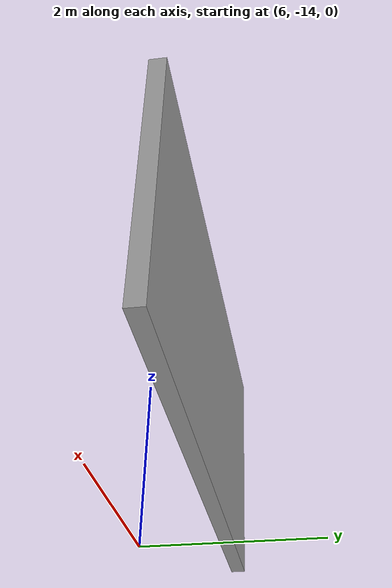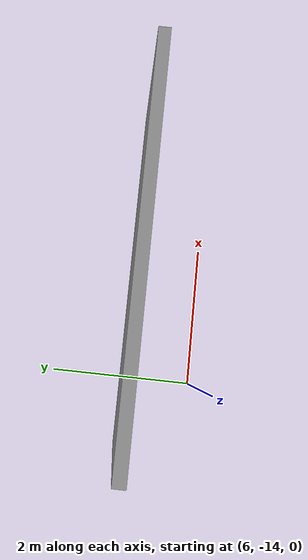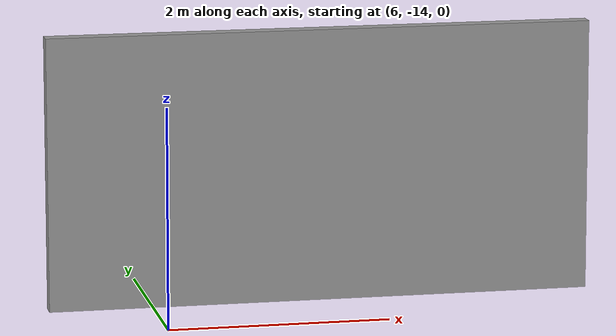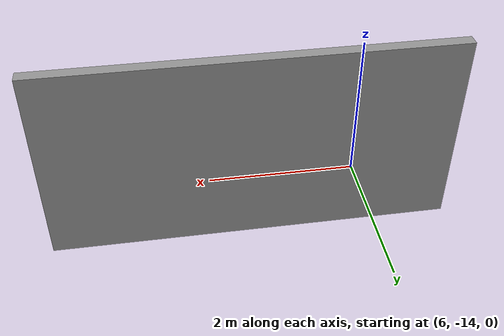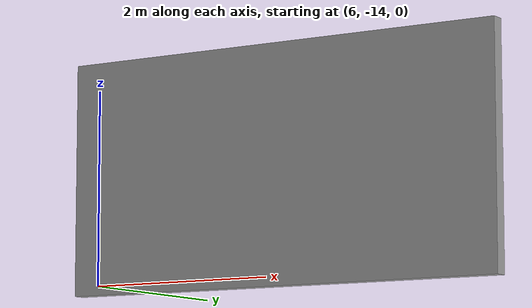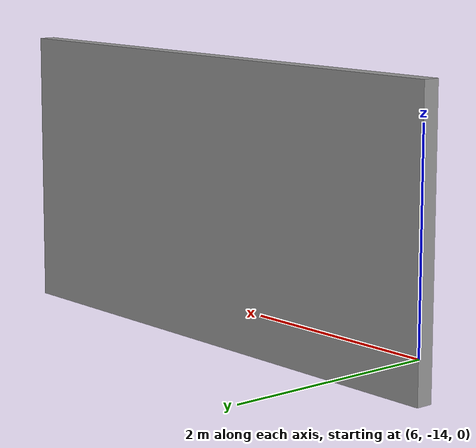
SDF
<?xml version='1.0'?>
<sdf version='1.7'>
  <model name='Greywall'>
    <pose>5.0275 -6.5675 0 0 -0 0</pose>
    <link name='Wall_0'>
      <collision name='Wall_0_Collision'>
        <geometry>
          <box>
            <size>5 0.15 2.5</size>
          </box>
        </geometry>
        <pose>0 0 1.25 0 -0 0</pose>
      </collision>
      <visual name='Wall_0_Visual'>
        <pose>0 0 1.25 0 -0 0</pose>
        <geometry>
          <box>
            <size>5 0.15 2.5</size>
          </box>
        </geometry>
        <material>
          <script>
            <uri>file://media/materials/scripts/gazebo.material</uri>
            <name>Gazebo/Grey</name>
          </script>
          <ambient>0.533333 0.541176 0.521569 1</ambient>
        </material>
        <meta>
          <layer>0</layer>
        </meta>
      </visual>
      <pose>2.5275 -6.4925 0 0 -0 0</pose>
    </link>
    <static>1</static>
  </model>
</sdf>
